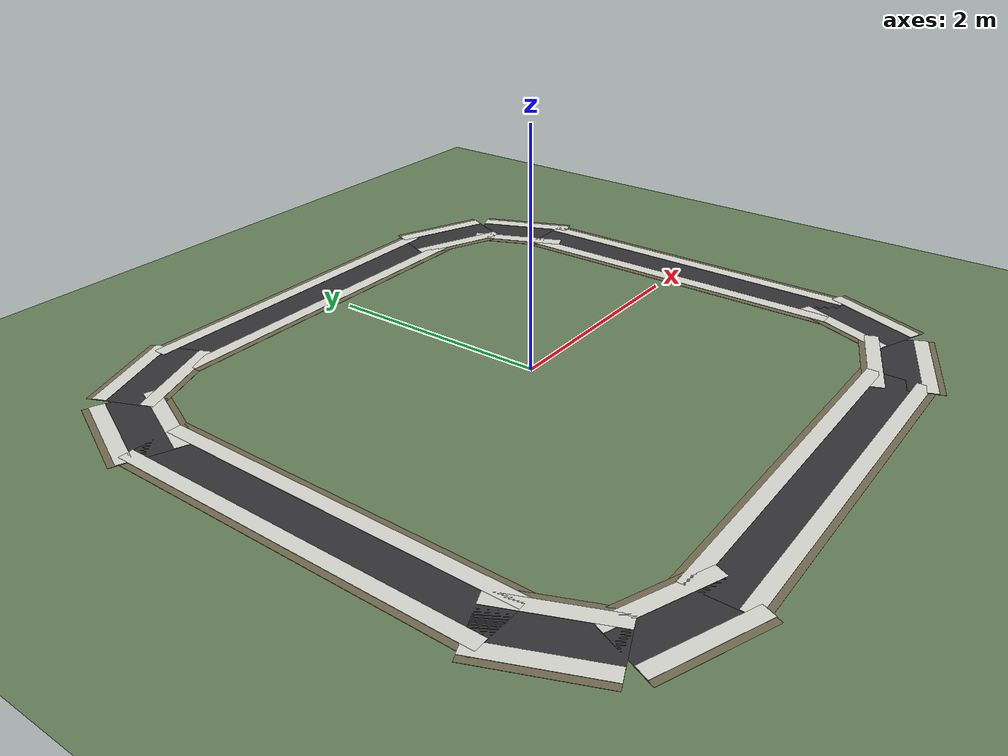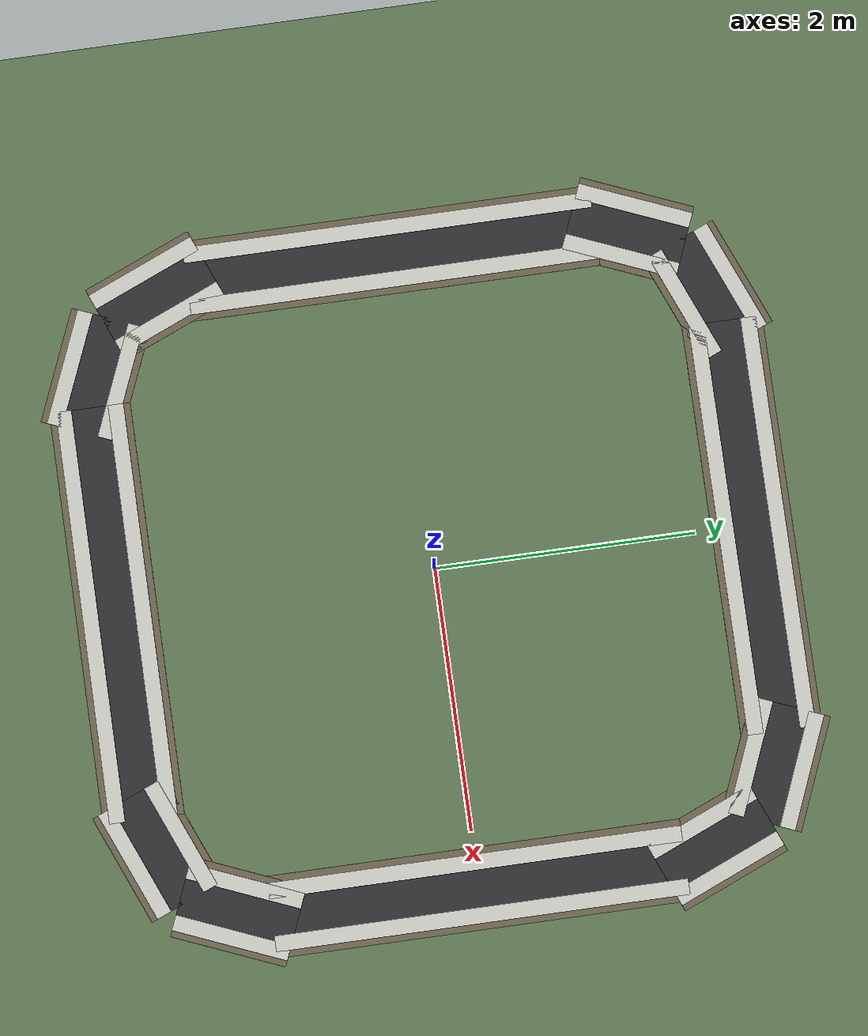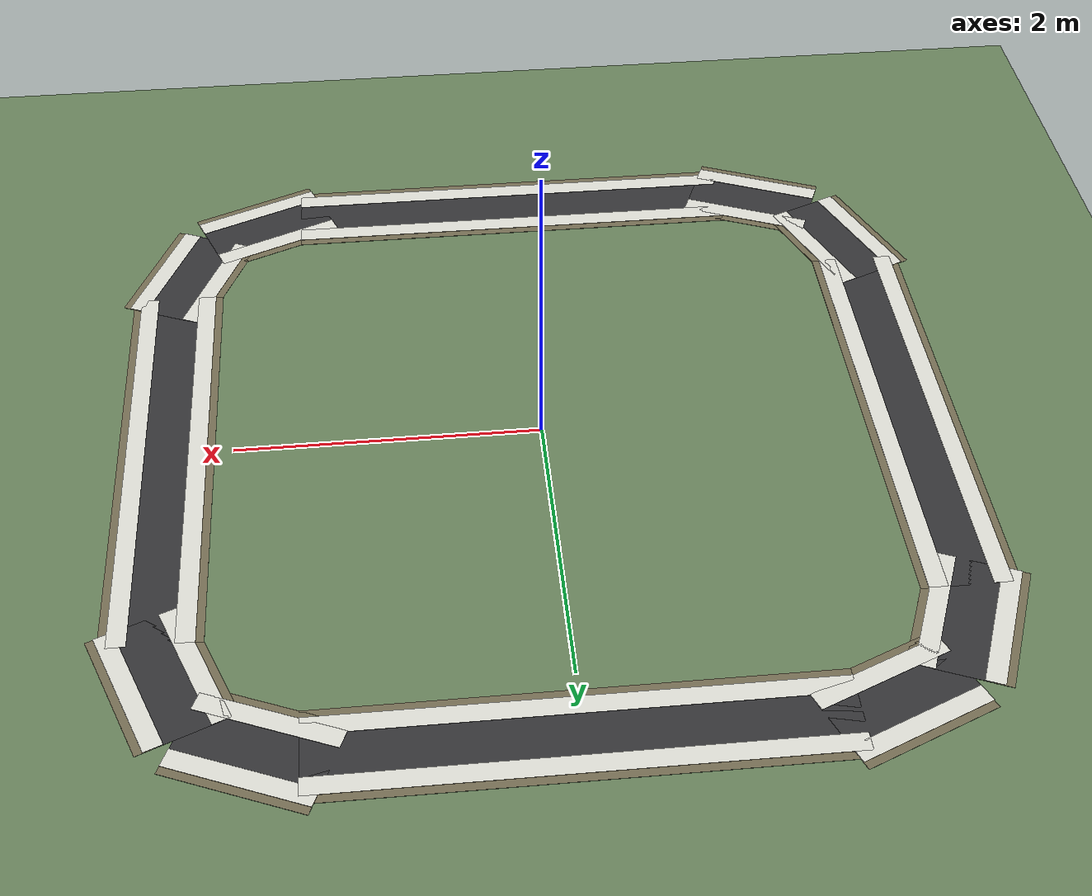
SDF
<?xml version="1.0" ?>
<sdf version="1.9">
  <world name="patrol_road">

    <physics name="1ms" type="ignored">
      <max_step_size>0.001</max_step_size>
      <real_time_factor>1.0</real_time_factor>
    </physics>

    <plugin filename="gz-sim-physics-system"
            name="gz::sim::systems::Physics"/>
    <plugin filename="gz-sim-user-commands-system"
            name="gz::sim::systems::UserCommands"/>
    <plugin filename="gz-sim-scene-broadcaster-system"
            name="gz::sim::systems::SceneBroadcaster"/>
    <!-- Renders the gpu_lidar; needs a GL 3.3 context (llvmpipe is enough). -->
    <plugin filename="gz-sim-sensors-system"
            name="gz::sim::systems::Sensors">
      <render_engine>ogre2</render_engine>
    </plugin>
    <plugin filename="gz-sim-imu-system"
            name="gz::sim::systems::Imu"/>
    <plugin filename="gz-sim-navsat-system"
            name="gz::sim::systems::NavSat"/>

    <!-- Datum for the simulated GNSS. Matches patrol_yard.sdf, and is the
         value to pin navsat_transform's `datum` to for sim runs. -->
    <spherical_coordinates>
      <surface_model>EARTH_WGS84</surface_model>
      <world_frame_orientation>ENU</world_frame_orientation>
      <latitude_deg>-41.286460</latitude_deg>
      <longitude_deg>174.776236</longitude_deg>
      <elevation>10.0</elevation>
    </spherical_coordinates>

    <scene>
      <ambient>0.6 0.6 0.6 1</ambient>
      <background>0.6 0.75 0.9 1</background>
      <grid>false</grid>
    </scene>

    <light type="directional" name="sun">
      <cast_shadows>true</cast_shadows>
      <pose>0 0 10 0 0 0</pose>
      <diffuse>0.9 0.9 0.9 1</diffuse>
      <specular>0.2 0.2 0.2 1</specular>
      <direction>-0.5 0.2 -0.9</direction>
    </light>

    <model name="ground_plane">
      <static>true</static>
      <link name="link">
        <collision name="collision">
          <geometry>
            <plane>
              <normal>0 0 1</normal>
              <size>200 200</size>
            </plane>
          </geometry>
          <surface>
            <friction>
              <ode>
                <mu>1.0</mu>
                <mu2>1.0</mu2>
              </ode>
            </friction>
          </surface>
        </collision>
        <visual name="visual">
          <geometry>
            <plane>
              <normal>0 0 1</normal>
              <size>200 200</size>
            </plane>
          </geometry>
          <material>
            <ambient>0.35 0.4 0.3 1</ambient>
            <diffuse>0.4 0.5 0.35 1</diffuse>
          </material>
        </visual>
      </link>
    </model>

    <!-- Painted road surface: visual only, no collision. -->
    <model name="patrol_road">
      <static>true</static>
      <link name="surface">
        <visual name="lane_000">
          <pose>0.0000 -2.4332 0.0050 0 0 0.000000</pose>
          <geometry><box><size>3.1457 0.4000 0.002</size></box></geometry>
          <material>
            <ambient>0.20 0.20 0.21 1</ambient>
            <diffuse>0.20 0.20 0.21 1</diffuse>
          </material>
        </visual>
        <visual name="lane_001">
          <pose>1.8159 -2.3571 0.0050 0 0 0.392699</pose>
          <geometry><box><size>0.8982 0.4000 0.002</size></box></geometry>
          <material>
            <ambient>0.20 0.20 0.21 1</ambient>
            <diffuse>0.20 0.20 0.21 1</diffuse>
          </material>
        </visual>
        <visual name="lane_002">
          <pose>2.3571 -1.8159 0.0050 0 0 1.178097</pose>
          <geometry><box><size>0.8982 0.4000 0.002</size></box></geometry>
          <material>
            <ambient>0.20 0.20 0.21 1</ambient>
            <diffuse>0.20 0.20 0.21 1</diffuse>
          </material>
        </visual>
        <visual name="lane_003">
          <pose>2.4332 0.0000 0.0050 0 0 1.570796</pose>
          <geometry><box><size>3.1457 0.4000 0.002</size></box></geometry>
          <material>
            <ambient>0.20 0.20 0.21 1</ambient>
            <diffuse>0.20 0.20 0.21 1</diffuse>
          </material>
        </visual>
        <visual name="lane_004">
          <pose>2.3571 1.8159 0.0050 0 0 1.963495</pose>
          <geometry><box><size>0.8982 0.4000 0.002</size></box></geometry>
          <material>
            <ambient>0.20 0.20 0.21 1</ambient>
            <diffuse>0.20 0.20 0.21 1</diffuse>
          </material>
        </visual>
        <visual name="lane_005">
          <pose>1.8159 2.3571 0.0050 0 0 2.748894</pose>
          <geometry><box><size>0.8982 0.4000 0.002</size></box></geometry>
          <material>
            <ambient>0.20 0.20 0.21 1</ambient>
            <diffuse>0.20 0.20 0.21 1</diffuse>
          </material>
        </visual>
        <visual name="lane_006">
          <pose>0.0000 2.4332 0.0050 0 0 3.141593</pose>
          <geometry><box><size>3.1457 0.4000 0.002</size></box></geometry>
          <material>
            <ambient>0.20 0.20 0.21 1</ambient>
            <diffuse>0.20 0.20 0.21 1</diffuse>
          </material>
        </visual>
        <visual name="lane_007">
          <pose>-1.8159 2.3571 0.0050 0 0 -2.748894</pose>
          <geometry><box><size>0.8982 0.4000 0.002</size></box></geometry>
          <material>
            <ambient>0.20 0.20 0.21 1</ambient>
            <diffuse>0.20 0.20 0.21 1</diffuse>
          </material>
        </visual>
        <visual name="lane_008">
          <pose>-2.3571 1.8159 0.0050 0 0 -1.963495</pose>
          <geometry><box><size>0.8982 0.4000 0.002</size></box></geometry>
          <material>
            <ambient>0.20 0.20 0.21 1</ambient>
            <diffuse>0.20 0.20 0.21 1</diffuse>
          </material>
        </visual>
        <visual name="lane_009">
          <pose>-2.4332 0.0000 0.0050 0 0 -1.570796</pose>
          <geometry><box><size>3.1457 0.4000 0.002</size></box></geometry>
          <material>
            <ambient>0.20 0.20 0.21 1</ambient>
            <diffuse>0.20 0.20 0.21 1</diffuse>
          </material>
        </visual>
        <visual name="lane_010">
          <pose>-2.3571 -1.8159 0.0050 0 0 -1.178097</pose>
          <geometry><box><size>0.8982 0.4000 0.002</size></box></geometry>
          <material>
            <ambient>0.20 0.20 0.21 1</ambient>
            <diffuse>0.20 0.20 0.21 1</diffuse>
          </material>
        </visual>
        <visual name="lane_011">
          <pose>-1.8159 -2.3571 0.0050 0 0 -0.392699</pose>
          <geometry><box><size>0.8982 0.4000 0.002</size></box></geometry>
          <material>
            <ambient>0.20 0.20 0.21 1</ambient>
            <diffuse>0.20 0.20 0.21 1</diffuse>
          </material>
        </visual>
        <visual name="shoulder_left_000">
          <pose>0.0000 -2.1782 0.0040 0 0 0.000000</pose>
          <geometry><box><size>3.1457 0.1100 0.002</size></box></geometry>
          <material>
            <ambient>0.45 0.42 0.32 1</ambient>
            <diffuse>0.45 0.42 0.32 1</diffuse>
          </material>
        </visual>
        <visual name="shoulder_left_001">
          <pose>1.7183 -2.1215 0.0040 0 0 0.392699</pose>
          <geometry><box><size>0.8982 0.1100 0.002</size></box></geometry>
          <material>
            <ambient>0.45 0.42 0.32 1</ambient>
            <diffuse>0.45 0.42 0.32 1</diffuse>
          </material>
        </visual>
        <visual name="shoulder_left_002">
          <pose>2.1215 -1.7183 0.0040 0 0 1.178097</pose>
          <geometry><box><size>0.8982 0.1100 0.002</size></box></geometry>
          <material>
            <ambient>0.45 0.42 0.32 1</ambient>
            <diffuse>0.45 0.42 0.32 1</diffuse>
          </material>
        </visual>
        <visual name="shoulder_left_003">
          <pose>2.1782 0.0000 0.0040 0 0 1.570796</pose>
          <geometry><box><size>3.1457 0.1100 0.002</size></box></geometry>
          <material>
            <ambient>0.45 0.42 0.32 1</ambient>
            <diffuse>0.45 0.42 0.32 1</diffuse>
          </material>
        </visual>
        <visual name="shoulder_left_004">
          <pose>2.1215 1.7183 0.0040 0 0 1.963495</pose>
          <geometry><box><size>0.8982 0.1100 0.002</size></box></geometry>
          <material>
            <ambient>0.45 0.42 0.32 1</ambient>
            <diffuse>0.45 0.42 0.32 1</diffuse>
          </material>
        </visual>
        <visual name="shoulder_left_005">
          <pose>1.7183 2.1215 0.0040 0 0 2.748894</pose>
          <geometry><box><size>0.8982 0.1100 0.002</size></box></geometry>
          <material>
            <ambient>0.45 0.42 0.32 1</ambient>
            <diffuse>0.45 0.42 0.32 1</diffuse>
          </material>
        </visual>
        <visual name="shoulder_left_006">
          <pose>0.0000 2.1782 0.0040 0 0 3.141593</pose>
          <geometry><box><size>3.1457 0.1100 0.002</size></box></geometry>
          <material>
            <ambient>0.45 0.42 0.32 1</ambient>
            <diffuse>0.45 0.42 0.32 1</diffuse>
          </material>
        </visual>
        <visual name="shoulder_left_007">
          <pose>-1.7183 2.1215 0.0040 0 0 -2.748894</pose>
          <geometry><box><size>0.8982 0.1100 0.002</size></box></geometry>
          <material>
            <ambient>0.45 0.42 0.32 1</ambient>
            <diffuse>0.45 0.42 0.32 1</diffuse>
          </material>
        </visual>
        <visual name="shoulder_left_008">
          <pose>-2.1215 1.7183 0.0040 0 0 -1.963495</pose>
          <geometry><box><size>0.8982 0.1100 0.002</size></box></geometry>
          <material>
            <ambient>0.45 0.42 0.32 1</ambient>
            <diffuse>0.45 0.42 0.32 1</diffuse>
          </material>
        </visual>
        <visual name="shoulder_left_009">
          <pose>-2.1782 0.0000 0.0040 0 0 -1.570796</pose>
          <geometry><box><size>3.1457 0.1100 0.002</size></box></geometry>
          <material>
            <ambient>0.45 0.42 0.32 1</ambient>
            <diffuse>0.45 0.42 0.32 1</diffuse>
          </material>
        </visual>
        <visual name="shoulder_left_010">
          <pose>-2.1215 -1.7183 0.0040 0 0 -1.178097</pose>
          <geometry><box><size>0.8982 0.1100 0.002</size></box></geometry>
          <material>
            <ambient>0.45 0.42 0.32 1</ambient>
            <diffuse>0.45 0.42 0.32 1</diffuse>
          </material>
        </visual>
        <visual name="shoulder_left_011">
          <pose>-1.7183 -2.1215 0.0040 0 0 -0.392699</pose>
          <geometry><box><size>0.8982 0.1100 0.002</size></box></geometry>
          <material>
            <ambient>0.45 0.42 0.32 1</ambient>
            <diffuse>0.45 0.42 0.32 1</diffuse>
          </material>
        </visual>
        <visual name="shoulder_right_000">
          <pose>0.0000 -2.6882 0.0040 0 0 0.000000</pose>
          <geometry><box><size>3.1457 0.1100 0.002</size></box></geometry>
          <material>
            <ambient>0.45 0.42 0.32 1</ambient>
            <diffuse>0.45 0.42 0.32 1</diffuse>
          </material>
        </visual>
        <visual name="shoulder_right_001">
          <pose>1.9135 -2.5927 0.0040 0 0 0.392699</pose>
          <geometry><box><size>0.8982 0.1100 0.002</size></box></geometry>
          <material>
            <ambient>0.45 0.42 0.32 1</ambient>
            <diffuse>0.45 0.42 0.32 1</diffuse>
          </material>
        </visual>
        <visual name="shoulder_right_002">
          <pose>2.5927 -1.9135 0.0040 0 0 1.178097</pose>
          <geometry><box><size>0.8982 0.1100 0.002</size></box></geometry>
          <material>
            <ambient>0.45 0.42 0.32 1</ambient>
            <diffuse>0.45 0.42 0.32 1</diffuse>
          </material>
        </visual>
        <visual name="shoulder_right_003">
          <pose>2.6882 0.0000 0.0040 0 0 1.570796</pose>
          <geometry><box><size>3.1457 0.1100 0.002</size></box></geometry>
          <material>
            <ambient>0.45 0.42 0.32 1</ambient>
            <diffuse>0.45 0.42 0.32 1</diffuse>
          </material>
        </visual>
        <visual name="shoulder_right_004">
          <pose>2.5927 1.9135 0.0040 0 0 1.963495</pose>
          <geometry><box><size>0.8982 0.1100 0.002</size></box></geometry>
          <material>
            <ambient>0.45 0.42 0.32 1</ambient>
            <diffuse>0.45 0.42 0.32 1</diffuse>
          </material>
        </visual>
        <visual name="shoulder_right_005">
          <pose>1.9135 2.5927 0.0040 0 0 2.748894</pose>
          <geometry><box><size>0.8982 0.1100 0.002</size></box></geometry>
          <material>
            <ambient>0.45 0.42 0.32 1</ambient>
            <diffuse>0.45 0.42 0.32 1</diffuse>
          </material>
        </visual>
        <visual name="shoulder_right_006">
          <pose>0.0000 2.6882 0.0040 0 0 3.141593</pose>
          <geometry><box><size>3.1457 0.1100 0.002</size></box></geometry>
          <material>
            <ambient>0.45 0.42 0.32 1</ambient>
            <diffuse>0.45 0.42 0.32 1</diffuse>
          </material>
        </visual>
        <visual name="shoulder_right_007">
          <pose>-1.9135 2.5927 0.0040 0 0 -2.748894</pose>
          <geometry><box><size>0.8982 0.1100 0.002</size></box></geometry>
          <material>
            <ambient>0.45 0.42 0.32 1</ambient>
            <diffuse>0.45 0.42 0.32 1</diffuse>
          </material>
        </visual>
        <visual name="shoulder_right_008">
          <pose>-2.5927 1.9135 0.0040 0 0 -1.963495</pose>
          <geometry><box><size>0.8982 0.1100 0.002</size></box></geometry>
          <material>
            <ambient>0.45 0.42 0.32 1</ambient>
            <diffuse>0.45 0.42 0.32 1</diffuse>
          </material>
        </visual>
        <visual name="shoulder_right_009">
          <pose>-2.6882 0.0000 0.0040 0 0 -1.570796</pose>
          <geometry><box><size>3.1457 0.1100 0.002</size></box></geometry>
          <material>
            <ambient>0.45 0.42 0.32 1</ambient>
            <diffuse>0.45 0.42 0.32 1</diffuse>
          </material>
        </visual>
        <visual name="shoulder_right_010">
          <pose>-2.5927 -1.9135 0.0040 0 0 -1.178097</pose>
          <geometry><box><size>0.8982 0.1100 0.002</size></box></geometry>
          <material>
            <ambient>0.45 0.42 0.32 1</ambient>
            <diffuse>0.45 0.42 0.32 1</diffuse>
          </material>
        </visual>
        <visual name="shoulder_right_011">
          <pose>-1.9135 -2.5927 0.0040 0 0 -0.392699</pose>
          <geometry><box><size>0.8982 0.1100 0.002</size></box></geometry>
          <material>
            <ambient>0.45 0.42 0.32 1</ambient>
            <diffuse>0.45 0.42 0.32 1</diffuse>
          </material>
        </visual>
        <visual name="edge_line_left_000">
          <pose>0.0000 -2.2332 0.0100 0 0 0.000000</pose>
          <geometry><box><size>3.1457 0.1200 0.002</size></box></geometry>
          <material>
            <ambient>0.85 0.85 0.82 1</ambient>
            <diffuse>0.85 0.85 0.82 1</diffuse>
          </material>
        </visual>
        <visual name="edge_line_left_001">
          <pose>1.7393 -2.1723 0.0100 0 0 0.392699</pose>
          <geometry><box><size>0.8982 0.1200 0.002</size></box></geometry>
          <material>
            <ambient>0.85 0.85 0.82 1</ambient>
            <diffuse>0.85 0.85 0.82 1</diffuse>
          </material>
        </visual>
        <visual name="edge_line_left_002">
          <pose>2.1723 -1.7393 0.0100 0 0 1.178097</pose>
          <geometry><box><size>0.8982 0.1200 0.002</size></box></geometry>
          <material>
            <ambient>0.85 0.85 0.82 1</ambient>
            <diffuse>0.85 0.85 0.82 1</diffuse>
          </material>
        </visual>
        <visual name="edge_line_left_003">
          <pose>2.2332 0.0000 0.0100 0 0 1.570796</pose>
          <geometry><box><size>3.1457 0.1200 0.002</size></box></geometry>
          <material>
            <ambient>0.85 0.85 0.82 1</ambient>
            <diffuse>0.85 0.85 0.82 1</diffuse>
          </material>
        </visual>
        <visual name="edge_line_left_004">
          <pose>2.1723 1.7393 0.0100 0 0 1.963495</pose>
          <geometry><box><size>0.8982 0.1200 0.002</size></box></geometry>
          <material>
            <ambient>0.85 0.85 0.82 1</ambient>
            <diffuse>0.85 0.85 0.82 1</diffuse>
          </material>
        </visual>
        <visual name="edge_line_left_005">
          <pose>1.7393 2.1723 0.0100 0 0 2.748894</pose>
          <geometry><box><size>0.8982 0.1200 0.002</size></box></geometry>
          <material>
            <ambient>0.85 0.85 0.82 1</ambient>
            <diffuse>0.85 0.85 0.82 1</diffuse>
          </material>
        </visual>
        <visual name="edge_line_left_006">
          <pose>0.0000 2.2332 0.0100 0 0 3.141593</pose>
          <geometry><box><size>3.1457 0.1200 0.002</size></box></geometry>
          <material>
            <ambient>0.85 0.85 0.82 1</ambient>
            <diffuse>0.85 0.85 0.82 1</diffuse>
          </material>
        </visual>
        <visual name="edge_line_left_007">
          <pose>-1.7393 2.1723 0.0100 0 0 -2.748894</pose>
          <geometry><box><size>0.8982 0.1200 0.002</size></box></geometry>
          <material>
            <ambient>0.85 0.85 0.82 1</ambient>
            <diffuse>0.85 0.85 0.82 1</diffuse>
          </material>
        </visual>
        <visual name="edge_line_left_008">
          <pose>-2.1723 1.7393 0.0100 0 0 -1.963495</pose>
          <geometry><box><size>0.8982 0.1200 0.002</size></box></geometry>
          <material>
            <ambient>0.85 0.85 0.82 1</ambient>
            <diffuse>0.85 0.85 0.82 1</diffuse>
          </material>
        </visual>
        <visual name="edge_line_left_009">
          <pose>-2.2332 0.0000 0.0100 0 0 -1.570796</pose>
          <geometry><box><size>3.1457 0.1200 0.002</size></box></geometry>
          <material>
            <ambient>0.85 0.85 0.82 1</ambient>
            <diffuse>0.85 0.85 0.82 1</diffuse>
          </material>
        </visual>
        <visual name="edge_line_left_010">
          <pose>-2.1723 -1.7393 0.0100 0 0 -1.178097</pose>
          <geometry><box><size>0.8982 0.1200 0.002</size></box></geometry>
          <material>
            <ambient>0.85 0.85 0.82 1</ambient>
            <diffuse>0.85 0.85 0.82 1</diffuse>
          </material>
        </visual>
        <visual name="edge_line_left_011">
          <pose>-1.7393 -2.1723 0.0100 0 0 -0.392699</pose>
          <geometry><box><size>0.8982 0.1200 0.002</size></box></geometry>
          <material>
            <ambient>0.85 0.85 0.82 1</ambient>
            <diffuse>0.85 0.85 0.82 1</diffuse>
          </material>
        </visual>
        <visual name="edge_line_right_000">
          <pose>0.0000 -2.6332 0.0100 0 0 0.000000</pose>
          <geometry><box><size>3.1457 0.1200 0.002</size></box></geometry>
          <material>
            <ambient>0.85 0.85 0.82 1</ambient>
            <diffuse>0.85 0.85 0.82 1</diffuse>
          </material>
        </visual>
        <visual name="edge_line_right_001">
          <pose>1.8924 -2.5419 0.0100 0 0 0.392699</pose>
          <geometry><box><size>0.8982 0.1200 0.002</size></box></geometry>
          <material>
            <ambient>0.85 0.85 0.82 1</ambient>
            <diffuse>0.85 0.85 0.82 1</diffuse>
          </material>
        </visual>
        <visual name="edge_line_right_002">
          <pose>2.5419 -1.8924 0.0100 0 0 1.178097</pose>
          <geometry><box><size>0.8982 0.1200 0.002</size></box></geometry>
          <material>
            <ambient>0.85 0.85 0.82 1</ambient>
            <diffuse>0.85 0.85 0.82 1</diffuse>
          </material>
        </visual>
        <visual name="edge_line_right_003">
          <pose>2.6332 0.0000 0.0100 0 0 1.570796</pose>
          <geometry><box><size>3.1457 0.1200 0.002</size></box></geometry>
          <material>
            <ambient>0.85 0.85 0.82 1</ambient>
            <diffuse>0.85 0.85 0.82 1</diffuse>
          </material>
        </visual>
        <visual name="edge_line_right_004">
          <pose>2.5419 1.8924 0.0100 0 0 1.963495</pose>
          <geometry><box><size>0.8982 0.1200 0.002</size></box></geometry>
          <material>
            <ambient>0.85 0.85 0.82 1</ambient>
            <diffuse>0.85 0.85 0.82 1</diffuse>
          </material>
        </visual>
        <visual name="edge_line_right_005">
          <pose>1.8924 2.5419 0.0100 0 0 2.748894</pose>
          <geometry><box><size>0.8982 0.1200 0.002</size></box></geometry>
          <material>
            <ambient>0.85 0.85 0.82 1</ambient>
            <diffuse>0.85 0.85 0.82 1</diffuse>
          </material>
        </visual>
        <visual name="edge_line_right_006">
          <pose>0.0000 2.6332 0.0100 0 0 3.141593</pose>
          <geometry><box><size>3.1457 0.1200 0.002</size></box></geometry>
          <material>
            <ambient>0.85 0.85 0.82 1</ambient>
            <diffuse>0.85 0.85 0.82 1</diffuse>
          </material>
        </visual>
        <visual name="edge_line_right_007">
          <pose>-1.8924 2.5419 0.0100 0 0 -2.748894</pose>
          <geometry><box><size>0.8982 0.1200 0.002</size></box></geometry>
          <material>
            <ambient>0.85 0.85 0.82 1</ambient>
            <diffuse>0.85 0.85 0.82 1</diffuse>
          </material>
        </visual>
        <visual name="edge_line_right_008">
          <pose>-2.5419 1.8924 0.0100 0 0 -1.963495</pose>
          <geometry><box><size>0.8982 0.1200 0.002</size></box></geometry>
          <material>
            <ambient>0.85 0.85 0.82 1</ambient>
            <diffuse>0.85 0.85 0.82 1</diffuse>
          </material>
        </visual>
        <visual name="edge_line_right_009">
          <pose>-2.6332 0.0000 0.0100 0 0 -1.570796</pose>
          <geometry><box><size>3.1457 0.1200 0.002</size></box></geometry>
          <material>
            <ambient>0.85 0.85 0.82 1</ambient>
            <diffuse>0.85 0.85 0.82 1</diffuse>
          </material>
        </visual>
        <visual name="edge_line_right_010">
          <pose>-2.5419 -1.8924 0.0100 0 0 -1.178097</pose>
          <geometry><box><size>0.8982 0.1200 0.002</size></box></geometry>
          <material>
            <ambient>0.85 0.85 0.82 1</ambient>
            <diffuse>0.85 0.85 0.82 1</diffuse>
          </material>
        </visual>
        <visual name="edge_line_right_011">
          <pose>-1.8924 -2.5419 0.0100 0 0 -0.392699</pose>
          <geometry><box><size>0.8982 0.1200 0.002</size></box></geometry>
          <material>
            <ambient>0.85 0.85 0.82 1</ambient>
            <diffuse>0.85 0.85 0.82 1</diffuse>
          </material>
        </visual>
      </link>
    </model>

  </world>
</sdf>
